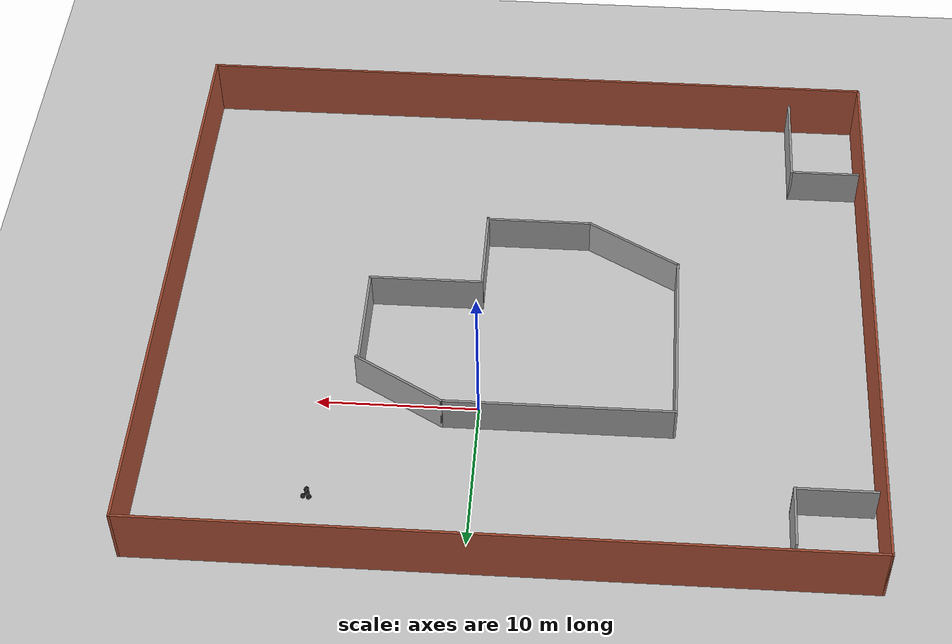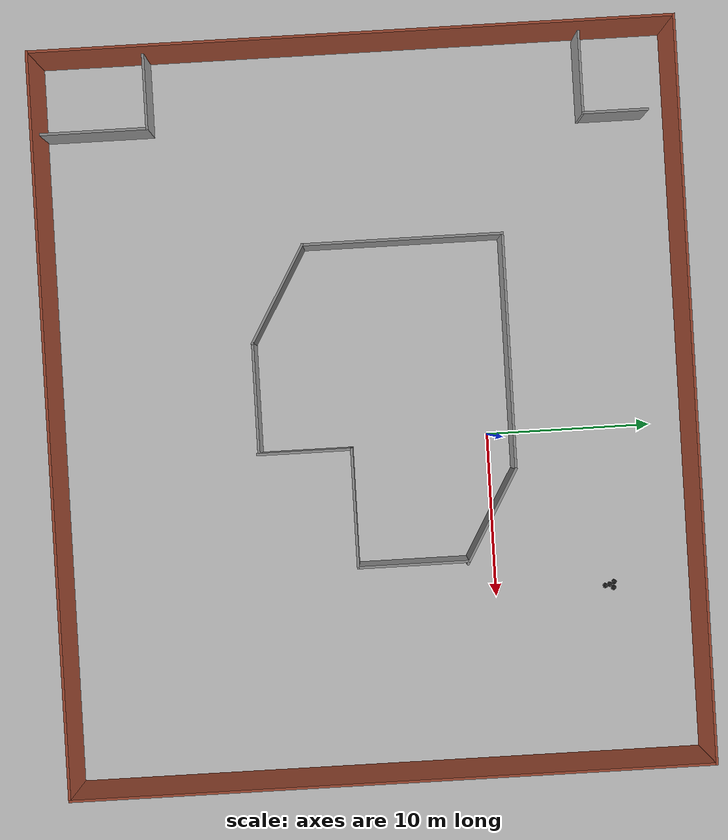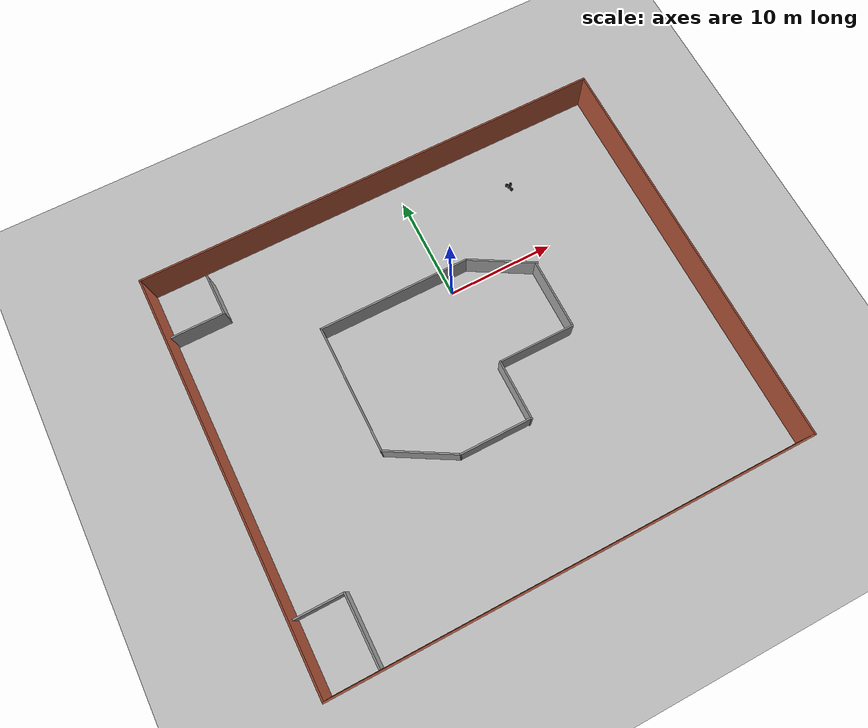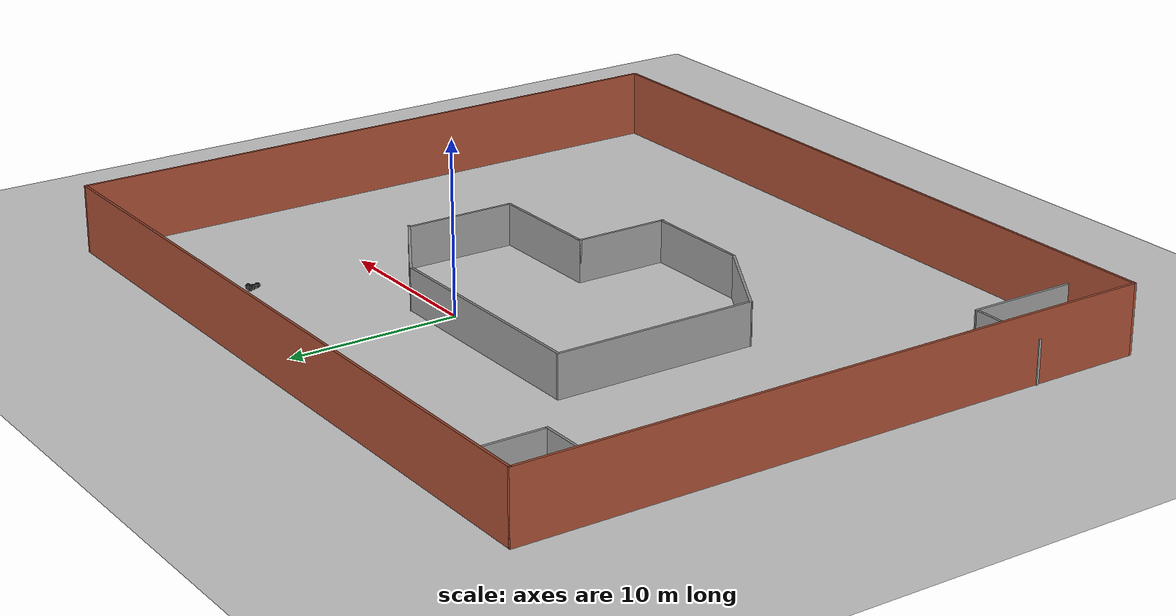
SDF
<sdf version="1.7">
 <world name="default">
  <model name="ground_plane">
   <static>1</static>
   <link name="link">
    <collision name="collision">
     <geometry><plane><normal>0 0 1</normal><size>100 100</size></plane></geometry>
     <surface><friction><ode><mu>100</mu><mu2>50</mu2></ode></friction></surface>
    </collision>
    <visual name="visual">
     <cast_shadows>0</cast_shadows>
     <geometry><plane><normal>0 0 1</normal><size>100 100</size></plane></geometry>
     <material>
      <script><uri>file://media/materials/scripts/gazebo.material</uri><name>Gazebo/Grey</name></script>
     </material>
    </visual>
   </link>
  </model>
  <model name="wall11">
   <pose>-2 -7 0 0 -0 0</pose>
   <link name="Wall_0">
    <collision name="Wall_0_Collision">
     <geometry><box><size>44.15 0.15 4</size></box></geometry>
     <pose>0 0 2 0 -0 0</pose>
    </collision>
    <visual name="Wall_0_Visual">
     <pose>0 0 2 0 -0 0</pose>
     <geometry><box><size>44.15 0.15 4</size></box></geometry>
     <material>
      <script><uri>file://media/materials/scripts/gazebo.material</uri><name>Gazebo/Bricks</name></script>
      <ambient>1 1 1 1</ambient>
     </material>
     <meta><layer>0</layer></meta>
    </visual>
    <pose>0 19 0 0 -0 0</pose>
   </link>
   <link name="Wall_2">
    <collision name="Wall_2_Collision">
     <geometry><box><size>38.15 0.15 4</size></box></geometry>
     <pose>0 0 2 0 -0 0</pose>
    </collision>
    <visual name="Wall_2_Visual">
     <pose>0 0 2 0 -0 0</pose>
     <geometry><box><size>38.15 0.15 4</size></box></geometry>
     <material>
      <script><uri>file://media/materials/scripts/gazebo.material</uri><name>Gazebo/Bricks</name></script>
      <ambient>1 1 1 1</ambient>
     </material>
     <meta><layer>0</layer></meta>
    </visual>
    <pose>22 0 0 0 -0 -1.5708</pose>
   </link>
   <link name="Wall_4">
    <collision name="Wall_4_Collision">
     <geometry><box><size>44.15 0.15 4</size></box></geometry>
     <pose>0 0 2 0 -0 0</pose>
    </collision>
    <visual name="Wall_4_Visual">
     <pose>0 0 2 0 -0 0</pose>
     <geometry><box><size>44.15 0.15 4</size></box></geometry>
     <material>
      <script><uri>file://media/materials/scripts/gazebo.material</uri><name>Gazebo/Bricks</name></script>
      <ambient>1 1 1 1</ambient>
     </material>
     <meta><layer>0</layer></meta>
    </visual>
    <pose>0 -19 0 0 -0 3.14159</pose>
   </link>
   <link name="Wall_6">
    <collision name="Wall_6_Collision">
     <geometry><box><size>38.15 0.15 4</size></box></geometry>
     <pose>0 0 2 0 -0 0</pose>
    </collision>
    <visual name="Wall_6_Visual">
     <pose>0 0 2 0 -0 0</pose>
     <geometry><box><size>38.15 0.15 4</size></box></geometry>
     <material>
      <script><uri>file://media/materials/scripts/gazebo.material</uri><name>Gazebo/Bricks</name></script>
      <ambient>1 1 1 1</ambient>
     </material>
     <meta><layer>0</layer></meta>
    </visual>
    <pose>-22 0 0 0 -0 1.5708</pose>
   </link>
   <static>1</static>
  </model>
  <model name="haoduomiantiaa_49">
   <link name="link_0">
    <inertial>
     <mass>0.2</mass>
     <inertia>
      <ixx>0.166667</ixx>
      <ixy>0</ixy>
      <ixz>0</ixz>
      <iyy>0.166667</iyy>
      <iyz>0</iyz>
      <izz>0.166667</izz>
     </inertia>
    </inertial>
    <visual name="visual">
     <geometry>
      <mesh>
       <uri>/home/lihaoyang/catkin_ws/src/pudong_gazebo/world/stl/haoduomianti.stl</uri>
       <scale>1 1 1</scale>
      </mesh>
     </geometry>
     <material>
      <lighting>1</lighting>
      <script><uri>file://media/materials/scripts/gazebo.material</uri><name>Gazebo/Black</name></script>
      <shader type="pixel"><normal_map>__default__</normal_map></shader>
      <ambient>0.3 0.3 0.3 1</ambient>
      <diffuse>0.7 0.7 0.7 1</diffuse>
      <specular>0.01 0.01 0.01 1</specular>
      <emissive>0 0 0 1</emissive>
     </material>
    </visual>
    <collision name="collision">
     <geometry>
      <mesh>
       <uri>/home/lihaoyang/catkin_ws/src/pudong_gazebo/world/stl/haoduomianti.stl</uri>
       <scale>1 1 1</scale>
      </mesh>
     </geometry>
     <surface>
      <friction>
       <ode><mu>1</mu><mu2>1</mu2><fdir1>0 0 0</fdir1><slip1>0</slip1><slip2>0</slip2></ode>
       <torsional>
        <coefficient>1</coefficient>
        <patch_radius>0</patch_radius>
        <surface_radius>0</surface_radius>
        <use_patch_radius>1</use_patch_radius>
        <ode><slip>0</slip></ode>
       </torsional>
      </friction>
      <bounce><restitution_coefficient>0</restitution_coefficient><threshold>1e+06</threshold></bounce>
      <contact>
       <collide_without_contact>0</collide_without_contact>
       <collide_without_contact_bitmask>1</collide_without_contact_bitmask>
       <collide_bitmask>1</collide_bitmask>
       <ode>
        <soft_cfm>0</soft_cfm>
        <soft_erp>0.2</soft_erp>
        <kp>1e+13</kp>
        <kd>1</kd>
        <max_vel>0.01</max_vel>
        <min_depth>0</min_depth>
       </ode>
       <bullet>
        <split_impulse>1</split_impulse>
        <split_impulse_penetration_threshold>-0.01</split_impulse_penetration_threshold>
        <soft_cfm>0</soft_cfm>
        <soft_erp>0.2</soft_erp>
        <kp>1e+13</kp>
        <kd>1</kd>
       </bullet>
      </contact>
     </surface>
    </collision>
   </link>
   <static>0</static>
   <pose>9.75301 6.72818 -0.115472 0.785401 -0.61548 -0.879953</pose>
  </model>
  <model name="haoduomiantiaa_53">
   <link name="link_0">
    <inertial>
     <mass>0.2</mass>
     <inertia>
      <ixx>0.166667</ixx>
      <ixy>0</ixy>
      <ixz>0</ixz>
      <iyy>0.166667</iyy>
      <iyz>0</iyz>
      <izz>0.166667</izz>
     </inertia>
    </inertial>
    <visual name="visual">
     <geometry>
      <mesh>
       <uri>/home/lihaoyang/catkin_ws/src/pudong_gazebo/world/stl/haoduomianti.stl</uri>
       <scale>1 1 1</scale>
      </mesh>
     </geometry>
     <material>
      <lighting>1</lighting>
      <script><uri>file://media/materials/scripts/gazebo.material</uri><name>Gazebo/Black</name></script>
      <shader type="pixel"><normal_map>__default__</normal_map></shader>
      <ambient>0.3 0.3 0.3 1</ambient>
      <diffuse>0.7 0.7 0.7 1</diffuse>
      <specular>0.01 0.01 0.01 1</specular>
      <emissive>0 0 0 1</emissive>
     </material>
    </visual>
    <collision name="collision">
     <geometry>
      <mesh>
       <uri>/home/lihaoyang/catkin_ws/src/pudong_gazebo/world/stl/haoduomianti.stl</uri>
       <scale>1 1 1</scale>
      </mesh>
     </geometry>
     <surface>
      <friction>
       <ode><mu>1</mu><mu2>1</mu2><fdir1>0 0 0</fdir1><slip1>0</slip1><slip2>0</slip2></ode>
       <torsional>
        <coefficient>1</coefficient>
        <patch_radius>0</patch_radius>
        <surface_radius>0</surface_radius>
        <use_patch_radius>1</use_patch_radius>
        <ode><slip>0</slip></ode>
       </torsional>
      </friction>
      <bounce><restitution_coefficient>0</restitution_coefficient><threshold>1e+06</threshold></bounce>
      <contact>
       <collide_without_contact>0</collide_without_contact>
       <collide_without_contact_bitmask>1</collide_without_contact_bitmask>
       <collide_bitmask>1</collide_bitmask>
       <ode>
        <soft_cfm>0</soft_cfm>
        <soft_erp>0.2</soft_erp>
        <kp>1e+13</kp>
        <kd>1</kd>
        <max_vel>0.01</max_vel>
        <min_depth>0</min_depth>
       </ode>
       <bullet>
        <split_impulse>1</split_impulse>
        <split_impulse_penetration_threshold>-0.01</split_impulse_penetration_threshold>
        <soft_cfm>0</soft_cfm>
        <soft_erp>0.2</soft_erp>
        <kp>1e+13</kp>
        <kd>1</kd>
       </bullet>
      </contact>
     </surface>
    </collision>
   </link>
   <static>0</static>
   <pose>9.89495 7.22504 -0.115479 0.785397 -0.615478 0.901003</pose>
  </model>
  <model name="haoduomiantiaa_138">
   <link name="link_0">
    <inertial>
     <mass>0.2</mass>
     <inertia>
      <ixx>0.166667</ixx>
      <ixy>0</ixy>
      <ixz>0</ixz>
      <iyy>0.166667</iyy>
      <iyz>0</iyz>
      <izz>0.166667</izz>
     </inertia>
    </inertial>
    <visual name="visual">
     <geometry>
      <mesh>
       <uri>/home/lihaoyang/catkin_ws/src/pudong_gazebo/world/stl/haoduomianti.stl</uri>
       <scale>1 1 1</scale>
      </mesh>
     </geometry>
     <material>
      <lighting>1</lighting>
      <script><uri>file://media/materials/scripts/gazebo.material</uri><name>Gazebo/Black</name></script>
      <shader type="pixel"><normal_map>__default__</normal_map></shader>
      <ambient>0.3 0.3 0.3 1</ambient>
      <diffuse>0.7 0.7 0.7 1</diffuse>
      <specular>0.01 0.01 0.01 1</specular>
      <emissive>0 0 0 1</emissive>
     </material>
    </visual>
    <collision name="collision">
     <geometry>
      <mesh>
       <uri>/home/lihaoyang/catkin_ws/src/pudong_gazebo/world/stl/haoduomianti.stl</uri>
       <scale>1 1 1</scale>
      </mesh>
     </geometry>
     <surface>
      <friction>
       <ode><mu>1</mu><mu2>1</mu2><fdir1>0 0 0</fdir1><slip1>0</slip1><slip2>0</slip2></ode>
       <torsional>
        <coefficient>1</coefficient>
        <patch_radius>0</patch_radius>
        <surface_radius>0</surface_radius>
        <use_patch_radius>1</use_patch_radius>
        <ode><slip>0</slip></ode>
       </torsional>
      </friction>
      <bounce><restitution_coefficient>0</restitution_coefficient><threshold>1e+06</threshold></bounce>
      <contact>
       <collide_without_contact>0</collide_without_contact>
       <collide_without_contact_bitmask>1</collide_without_contact_bitmask>
       <collide_bitmask>1</collide_bitmask>
       <ode>
        <soft_cfm>0</soft_cfm>
        <soft_erp>0.2</soft_erp>
        <kp>1e+13</kp>
        <kd>1</kd>
        <max_vel>0.01</max_vel>
        <min_depth>0</min_depth>
       </ode>
       <bullet>
        <split_impulse>1</split_impulse>
        <split_impulse_penetration_threshold>-0.01</split_impulse_penetration_threshold>
        <soft_cfm>0</soft_cfm>
        <soft_erp>0.2</soft_erp>
        <kp>1e+13</kp>
        <kd>1</kd>
       </bullet>
      </contact>
     </surface>
    </collision>
   </link>
   <static>0</static>
   <pose>9.68315 7.0076 -0.11547 0.785399 -0.615475 2.34757</pose>
  </model>
  <model name="haoduomiantiaa_144">
   <link name="link_0">
    <inertial>
     <mass>0.2</mass>
     <inertia>
      <ixx>0.166667</ixx>
      <ixy>0</ixy>
      <ixz>0</ixz>
      <iyy>0.166667</iyy>
      <iyz>0</iyz>
      <izz>0.166667</izz>
     </inertia>
    </inertial>
    <visual name="visual">
     <geometry>
      <mesh>
       <uri>/home/lihaoyang/catkin_ws/src/pudong_gazebo/world/stl/haoduomianti.stl</uri>
       <scale>1 1 1</scale>
      </mesh>
     </geometry>
     <material>
      <lighting>1</lighting>
      <script><uri>file://media/materials/scripts/gazebo.material</uri><name>Gazebo/Black</name></script>
      <shader type="pixel"><normal_map>__default__</normal_map></shader>
      <ambient>0.3 0.3 0.3 1</ambient>
      <diffuse>0.7 0.7 0.7 1</diffuse>
      <specular>0.01 0.01 0.01 1</specular>
      <emissive>0 0 0 1</emissive>
     </material>
    </visual>
    <collision name="collision">
     <geometry>
      <mesh>
       <uri>/home/lihaoyang/catkin_ws/src/pudong_gazebo/world/stl/haoduomianti.stl</uri>
       <scale>1 1 1</scale>
      </mesh>
     </geometry>
     <surface>
      <friction>
       <ode><mu>1</mu><mu2>1</mu2><fdir1>0 0 0</fdir1><slip1>0</slip1><slip2>0</slip2></ode>
       <torsional>
        <coefficient>1</coefficient>
        <patch_radius>0</patch_radius>
        <surface_radius>0</surface_radius>
        <use_patch_radius>1</use_patch_radius>
        <ode><slip>0</slip></ode>
       </torsional>
      </friction>
      <bounce><restitution_coefficient>0</restitution_coefficient><threshold>1e+06</threshold></bounce>
      <contact>
       <collide_without_contact>0</collide_without_contact>
       <collide_without_contact_bitmask>1</collide_without_contact_bitmask>
       <collide_bitmask>1</collide_bitmask>
       <ode>
        <soft_cfm>0</soft_cfm>
        <soft_erp>0.2</soft_erp>
        <kp>1e+13</kp>
        <kd>1</kd>
        <max_vel>0.01</max_vel>
        <min_depth>0</min_depth>
       </ode>
       <bullet>
        <split_impulse>1</split_impulse>
        <split_impulse_penetration_threshold>-0.01</split_impulse_penetration_threshold>
        <soft_cfm>0</soft_cfm>
        <soft_erp>0.2</soft_erp>
        <kp>1e+13</kp>
        <kd>1</kd>
       </bullet>
      </contact>
     </surface>
    </collision>
   </link>
   <static>0</static>
   <pose>9.54764 7.27986 -0.115479 0.785404 -0.615478 -1.98863</pose>
  </model>
  <model name="emptywall">
   <pose>-8.19762 -7.65624 0 0 -0 0</pose>
   <link name="Wall_28">
    <collision name="Wall_28_Collision">
     <geometry><box><size>6.5 0.15 2.5</size></box></geometry>
     <pose>0 0 1.25 0 -0 0</pose>
    </collision>
    <visual name="Wall_28_Visual">
     <pose>0 0 1.25 0 -0 0</pose>
     <geometry><box><size>6.5 0.15 2.5</size></box></geometry>
     <material>
      <script><uri>file://media/materials/scripts/gazebo.material</uri><name>Gazebo/Grey</name></script>
      <ambient>1 1 1 1</ambient>
     </material>
     <meta><layer>0</layer></meta>
    </visual>
    <pose>13.0842 7.48177 0 0 -0 -0.523599</pose>
   </link>
   <link name="Wall_32">
    <collision name="Wall_32_Collision">
     <geometry><box><size>6.75 0.15 2.5</size></box></geometry>
     <pose>0 0 1.25 0 -0 0</pose>
    </collision>
    <visual name="Wall_32_Visual">
     <pose>0 0 1.25 0 -0 0</pose>
     <geometry><box><size>6.75 0.15 2.5</size></box></geometry>
     <material>
      <script><uri>file://media/materials/scripts/gazebo.material</uri><name>Gazebo/Grey</name></script>
      <ambient>1 1 1 1</ambient>
     </material>
     <meta><layer>0</layer></meta>
    </visual>
    <pose>-0.923912 -4.58041 0 0 -0 -0.523599</pose>
   </link>
   <link name="Wall_39">
    <collision name="Wall_39_Collision">
     <geometry><box><size>12.1401 0.15 2.5</size></box></geometry>
     <pose>0 0 1.25 0 -0 0</pose>
    </collision>
    <visual name="Wall_39_Visual">
     <pose>0 0 1.25 0 -0 0</pose>
     <geometry><box><size>12.1401 0.15 2.5</size></box></geometry>
     <material>
      <script><uri>file://media/materials/scripts/gazebo.material</uri><name>Gazebo/Grey</name></script>
      <ambient>1 1 1 1</ambient>
     </material>
     <meta><layer>0</layer></meta>
    </visual>
    <pose>-3.7818 3.06459 0 0 -0 1.5708</pose>
   </link>
   <link name="Wall_41">
    <collision name="Wall_41_Collision">
     <geometry><box><size>14.25 0.15 2.5</size></box></geometry>
     <pose>0 0 1.25 0 -0 0</pose>
    </collision>
    <visual name="Wall_41_Visual">
     <pose>0 0 1.25 0 -0 0</pose>
     <geometry><box><size>14.25 0.15 2.5</size></box></geometry>
     <material>
      <script><uri>file://media/materials/scripts/gazebo.material</uri><name>Gazebo/Grey</name></script>
      <ambient>1 1 1 1</ambient>
     </material>
     <meta><layer>0</layer></meta>
    </visual>
    <pose>3.2682 9.05959 0 0 -0 0</pose>
   </link>
   <link name="Wall_43">
    <collision name="Wall_43_Collision">
     <geometry><box><size>4 0.15 2.5</size></box></geometry>
     <pose>0 0 1.25 0 -0 0</pose>
    </collision>
    <visual name="Wall_43_Visual">
     <pose>0 0 1.25 0 -0 0</pose>
     <geometry><box><size>4 0.15 2.5</size></box></geometry>
     <material>
      <script><uri>file://media/materials/scripts/gazebo.material</uri><name>Gazebo/Grey</name></script>
      <ambient>1 1 1 1</ambient>
     </material>
     <meta><layer>0</layer></meta>
    </visual>
    <pose>-10.6825 16.2122 0 0 -0 -1.5708</pose>
   </link>
   <link name="Wall_44">
    <collision name="Wall_44_Collision">
     <geometry><box><size>5 0.15 2.5</size></box></geometry>
     <pose>0 0 1.25 0 -0 0</pose>
    </collision>
    <visual name="Wall_44_Visual">
     <pose>0 0 1.25 0 -0 0</pose>
     <geometry><box><size>5 0.15 2.5</size></box></geometry>
     <material>
      <script><uri>file://media/materials/scripts/gazebo.material</uri><name>Gazebo/Grey</name></script>
      <ambient>1 1 1 1</ambient>
     </material>
     <meta><layer>0</layer></meta>
    </visual>
    <pose>-13.1075 14.2872 0 0 -0 3.14159</pose>
   </link>
   <link name="Wall_48">
    <collision name="Wall_48_Collision">
     <geometry><box><size>4.75 0.15 2.5</size></box></geometry>
     <pose>0 0 1.25 0 -0 0</pose>
    </collision>
    <visual name="Wall_48_Visual">
     <pose>0 0 1.25 0 -0 0</pose>
     <geometry><box><size>4.75 0.15 2.5</size></box></geometry>
     <material>
      <script><uri>file://media/materials/scripts/gazebo.material</uri><name>Gazebo/Grey</name></script>
      <ambient>1 1 1 1</ambient>
     </material>
     <meta><layer>0</layer></meta>
    </visual>
    <pose>-13.5613 -11.7872 0 0 -0 0</pose>
   </link>
   <link name="Wall_49">
    <collision name="Wall_49_Collision">
     <geometry><box><size>6.5 0.15 2.5</size></box></geometry>
     <pose>0 0 1.25 0 -0 0</pose>
    </collision>
    <visual name="Wall_49_Visual">
     <pose>0 0 1.25 0 -0 0</pose>
     <geometry><box><size>6.5 0.15 2.5</size></box></geometry>
     <material>
      <script><uri>file://media/materials/scripts/gazebo.material</uri><name>Gazebo/Grey</name></script>
      <ambient>1 1 1 1</ambient>
     </material>
     <meta><layer>0</layer></meta>
    </visual>
    <pose>-11.2613 -14.9622 0 0 -0 -1.5708</pose>
   </link>
   <link name="Wall_51">
    <collision name="Wall_51_Collision">
     <geometry><box><size>7.25 0.15 2.5</size></box></geometry>
     <pose>0 0 1.25 0 -0 0</pose>
    </collision>
    <visual name="Wall_51_Visual">
     <pose>0 0 1.25 0 -0 0</pose>
     <geometry><box><size>7.25 0.15 2.5</size></box></geometry>
     <material>
      <script><uri>file://media/materials/scripts/gazebo.material</uri><name>Gazebo/Grey</name></script>
      <ambient>1 1 1 1</ambient>
     </material>
     <meta><layer>0</layer></meta>
    </visual>
    <pose>12.14 -0.690334 0 0 -0 3.14159</pose>
   </link>
   <link name="Wall_52">
    <collision name="Wall_52_Collision">
     <geometry><box><size>5.75 0.15 2.5</size></box></geometry>
     <pose>0 0 1.25 0 -0 0</pose>
    </collision>
    <visual name="Wall_52_Visual">
     <pose>0 0 1.25 0 -0 0</pose>
     <geometry><box><size>5.75 0.15 2.5</size></box></geometry>
     <material>
      <script><uri>file://media/materials/scripts/gazebo.material</uri><name>Gazebo/Grey</name></script>
      <ambient>1 1 1 1</ambient>
     </material>
     <meta><layer>0</layer></meta>
    </visual>
    <pose>8.58999 -3.49033 0 0 -0 -1.5708</pose>
   </link>
   <link name="Wall_54">
    <collision name="Wall_54_Collision">
     <geometry><box><size>6.75 0.15 2.5</size></box></geometry>
     <pose>0 0 1.25 0 -0 0</pose>
    </collision>
    <visual name="Wall_54_Visual">
     <pose>0 0 1.25 0 -0 0</pose>
     <geometry><box><size>6.75 0.15 2.5</size></box></geometry>
     <material>
      <script><uri>file://media/materials/scripts/gazebo.material</uri><name>Gazebo/Grey</name></script>
      <ambient>1 1 1 1</ambient>
     </material>
     <meta><layer>0</layer></meta>
    </visual>
    <pose>15.69 2.60967 0 0 -0 1.5708</pose>
   </link>
   <link name="Wall_59">
    <collision name="Wall_59_Collision">
     <geometry><box><size>6.75 0.15 2.5</size></box></geometry>
     <pose>0 0 1.25 0 -0 0</pose>
    </collision>
    <visual name="Wall_59_Visual">
     <pose>0 0 1.25 0 -0 0</pose>
     <geometry><box><size>6.75 0.15 2.5</size></box></geometry>
     <material>
      <script><uri>file://media/materials/scripts/gazebo.material</uri><name>Gazebo/Grey</name></script>
      <ambient>1 1 1 1</ambient>
     </material>
     <meta><layer>0</layer></meta>
    </visual>
    <pose>5.23397 -6.23041 0 0 -0 0</pose>
   </link>
   <static>1</static>
  </model>
 </world>
</sdf>
